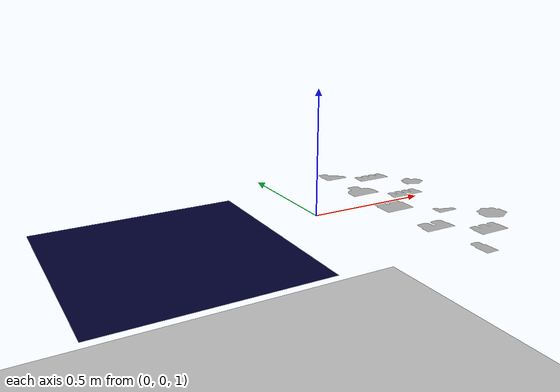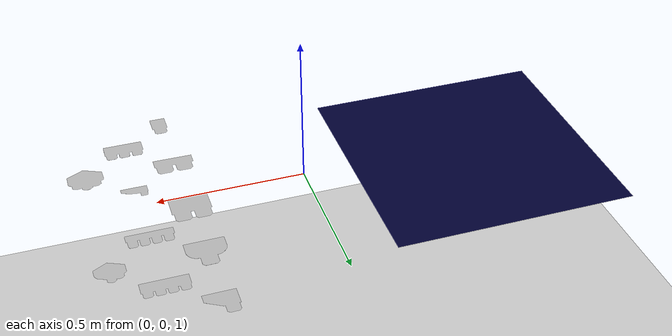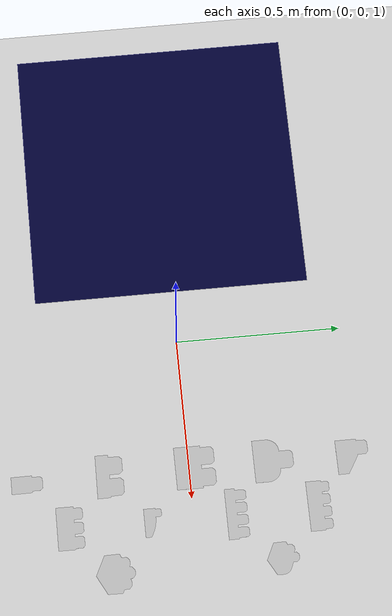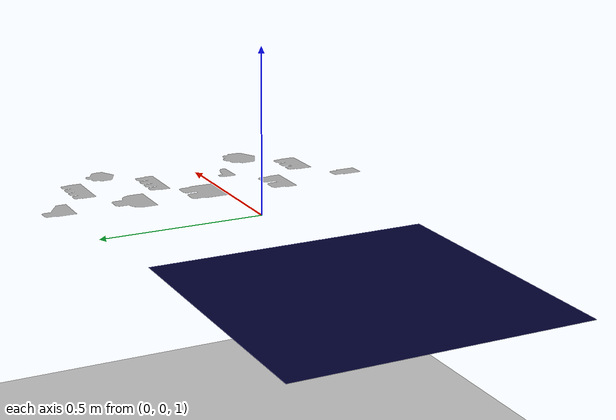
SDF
<sdf version="1.7">
 <world name="default">
  <light name="sun" type="directional">
   <pose>0 0 10 0 -0 0</pose>
   <diffuse>0.8 0.8 0.8 1</diffuse>
   <specular>0.2 0.2 0.2 1</specular>
   <attenuation>
    <range>1000</range>
    <constant>0.9</constant>
    <linear>0.01</linear>
    <quadratic>0.001</quadratic>
   </attenuation>
   <direction>-0.5 0.1 -0.9</direction>
   <spot><inner_angle>0</inner_angle><outer_angle>0</outer_angle><falloff>0</falloff></spot>
  </light>
  <model name="ground_plane">
   <pose>0 10 0 0 -0 0</pose>
   <static>1</static>
   <link name="link">
    <collision name="collision">
     <geometry><plane><normal>0 0 1</normal><size>100 100</size></plane></geometry>
     <surface>
      <contact><collide_bitmask>65535</collide_bitmask></contact>
      <friction><ode><mu>100</mu><mu2>50</mu2></ode></friction>
     </surface>
    </collision>
    <visual name="visual">
     <cast_shadows>0</cast_shadows>
     <geometry><plane><normal>0 0 1</normal><size>100 100</size></plane></geometry>
     <material>
      <script><uri>file://media/materials/scripts/gazebo.material</uri><name>Gazebo/Grey</name></script>
     </material>
    </visual>
   </link>
  </model>
  <gravity>0 0 -9.8</gravity>
  <magnetic_field>6e-06 2.3e-05 -4.2e-05</magnetic_field>
  <atmosphere type="adiabatic"/>
  <physics type="ode">
   <max_step_size>0.001</max_step_size>
   <real_time_factor>1</real_time_factor>
   <real_time_update_rate>1000</real_time_update_rate>
  </physics>
  <scene><ambient>0.4 0.4 0.4 1</ambient><background>0.7 0.7 0.7 1</background><shadows>1</shadows></scene>
  <spherical_coordinates>
   <surface_model>EARTH_WGS84</surface_model>
   <latitude_deg>0</latitude_deg>
   <longitude_deg>0</longitude_deg>
   <elevation>0</elevation>
   <heading_deg>0</heading_deg>
  </spherical_coordinates>
  <model name="silhouettes">
   <joint name="world_to_112" type="fixed">
    <pose relative_to="__model__">0.655 -0.29 0.667572 0 -0 0</pose>
    <parent>world</parent>
    <child>112-silhouette</child>
   </joint>
   <link name="112-silhouette">
    <pose relative_to="world_to_112">0 0 0 0 -0 0</pose>
    <inertial>
     <mass>0.005</mass>
     <inertia>
      <ixx>0.0004</ixx>
      <ixy>0.0001</ixy>
      <ixz>0</ixz>
      <iyy>0.0006</iyy>
      <iyz>0</iyz>
      <izz>0.0007</izz>
     </inertia>
    </inertial>
    <visual name="112-silhouette_visual">
     <geometry>
      <mesh>
       <scale>1 1 1</scale>
       <uri>/mnt/c/Users/davip/terzo_anno/Robotics/workspaces/PROGETTO_ROBOTICA/ur_grippertest/src/support/legos/legos_silhouettes/112-silhouette.dae</uri>
      </mesh>
     </geometry>
    </visual>
   </link>
   <joint name="world_to_121" type="fixed">
    <pose relative_to="__model__">0.567 -0.15 0.70912 0 -0 0</pose>
    <parent>world</parent>
    <child>121-silhouette</child>
   </joint>
   <link name="121-silhouette">
    <pose relative_to="world_to_121">0 0 0 0 -0 0</pose>
    <inertial>
     <mass>0.005</mass>
     <inertia>
      <ixx>0.0004</ixx>
      <ixy>0.0001</ixy>
      <ixz>0</ixz>
      <iyy>0.0006</iyy>
      <iyz>0</iyz>
      <izz>0.0007</izz>
     </inertia>
    </inertial>
    <visual name="121-silhouette_visual">
     <geometry>
      <mesh>
       <scale>1 1 1</scale>
       <uri>/mnt/c/Users/davip/terzo_anno/Robotics/workspaces/PROGETTO_ROBOTICA/ur_grippertest/src/support/legos/legos_silhouettes/121-silhouette.dae</uri>
      </mesh>
     </geometry>
    </visual>
   </link>
   <joint name="world_to_122" type="fixed">
    <pose relative_to="__model__">0.387 0 0.679568 0 -0 0</pose>
    <parent>world</parent>
    <child>122-silhouette</child>
   </joint>
   <link name="122-silhouette">
    <pose relative_to="world_to_122">0 0 0 0 -0 0</pose>
    <inertial>
     <mass>0.005</mass>
     <inertia>
      <ixx>0.0004</ixx>
      <ixy>0.0001</ixy>
      <ixz>0</ixz>
      <iyy>0.0006</iyy>
      <iyz>0</iyz>
      <izz>0.0007</izz>
     </inertia>
    </inertial>
    <visual name="122-silhouette_visual">
     <geometry>
      <mesh>
       <scale>1 1 1</scale>
       <uri>/mnt/c/Users/davip/terzo_anno/Robotics/workspaces/PROGETTO_ROBOTICA/ur_grippertest/src/support/legos/legos_silhouettes/122-silhouette.dae</uri>
      </mesh>
     </geometry>
    </visual>
   </link>
   <joint name="world_to_122doublearch" type="fixed">
    <pose relative_to="__model__">0.529 0.426 0.682539 0 -0 0</pose>
    <parent>world</parent>
    <child>122doublearch-silhouette</child>
   </joint>
   <link name="122doublearch-silhouette">
    <pose relative_to="world_to_122doublearch">0 0 0 0 -0 0</pose>
    <inertial>
     <mass>0.005</mass>
     <inertia>
      <ixx>0.0004</ixx>
      <ixy>0.0001</ixy>
      <ixz>0</ixz>
      <iyy>0.0006</iyy>
      <iyz>0</iyz>
      <izz>0.0007</izz>
     </inertia>
    </inertial>
    <visual name="122doublearch-silhouette_visual">
     <geometry>
      <mesh>
       <scale>1 1 1</scale>
       <uri>/mnt/c/Users/davip/terzo_anno/Robotics/workspaces/PROGETTO_ROBOTICA/ur_grippertest/src/support/legos/legos_silhouettes/122doublearch-silhouette.dae</uri>
      </mesh>
     </geometry>
    </visual>
   </link>
   <joint name="world_to_122slope" type="fixed">
    <pose relative_to="__model__">0.616 0.75 0.710843 0 -0 0</pose>
    <parent>world</parent>
    <child>122slope-silhouette</child>
   </joint>
   <link name="122slope-silhouette">
    <pose relative_to="world_to_122slope">0 0 0 0 -0 0</pose>
    <inertial>
     <mass>0.005</mass>
     <inertia>
      <ixx>0.0004</ixx>
      <ixy>0.0001</ixy>
      <ixz>0</ixz>
      <iyy>0.0006</iyy>
      <iyz>0</iyz>
      <izz>0.0007</izz>
     </inertia>
    </inertial>
    <visual name="122slope-silhouette_visual">
     <geometry>
      <mesh>
       <scale>1 1 1</scale>
       <uri>/mnt/c/Users/davip/terzo_anno/Robotics/workspaces/PROGETTO_ROBOTICA/ur_grippertest/src/support/legos/legos_silhouettes/122slope-silhouette.dae</uri>
      </mesh>
     </geometry>
    </visual>
   </link>
   <joint name="world_to_132" type="fixed">
    <pose relative_to="__model__">0.78 -0.247 0.682539 0 -0 0</pose>
    <parent>world</parent>
    <child>132-silhouette</child>
   </joint>
   <link name="132-silhouette">
    <pose relative_to="world_to_132">0 0 0 0 -0 0</pose>
    <inertial>
     <mass>0.005</mass>
     <inertia>
      <ixx>0.0004</ixx>
      <ixy>0.0001</ixy>
      <ixz>0</ixz>
      <iyy>0.0006</iyy>
      <iyz>0</iyz>
      <izz>0.0007</izz>
     </inertia>
    </inertial>
    <visual name="132-silhouette_visual">
     <geometry>
      <mesh>
       <scale>1 1 1</scale>
       <uri>/mnt/c/Users/davip/terzo_anno/Robotics/workspaces/PROGETTO_ROBOTICA/ur_grippertest/src/support/legos/legos_silhouettes/132-silhouette.dae</uri>
      </mesh>
     </geometry>
    </visual>
   </link>
   <joint name="world_to_132arch" type="fixed">
    <pose relative_to="__model__">0.765 0.014 0.717746 0 -0 0</pose>
    <parent>world</parent>
    <child>132arch-silhouette</child>
   </joint>
   <link name="132arch-silhouette">
    <pose relative_to="world_to_132arch">0 0 0 0 -0 0</pose>
    <inertial>
     <mass>0.005</mass>
     <inertia>
      <ixx>0.0004</ixx>
      <ixy>0.0001</ixy>
      <ixz>0</ixz>
      <iyy>0.0006</iyy>
      <iyz>0</iyz>
      <izz>0.0007</izz>
     </inertia>
    </inertial>
    <visual name="132arch-silhouette_visual">
     <geometry>
      <mesh>
       <scale>1 1 1</scale>
       <uri>/mnt/c/Users/davip/terzo_anno/Robotics/workspaces/PROGETTO_ROBOTICA/ur_grippertest/src/support/legos/legos_silhouettes/132arch-silhouette.dae</uri>
      </mesh>
     </geometry>
    </visual>
   </link>
   <joint name="world_to_141" type="fixed">
    <pose relative_to="__model__">0.727 0.175 0.711201 0 -0 0</pose>
    <parent>world</parent>
    <child>141-silhouette</child>
   </joint>
   <link name="141-silhouette">
    <pose relative_to="world_to_141">0 0 0 0 -0 0</pose>
    <inertial>
     <mass>0.005</mass>
     <inertia>
      <ixx>0.0004</ixx>
      <ixy>0.0001</ixy>
      <ixz>0</ixz>
      <iyy>0.0006</iyy>
      <iyz>0</iyz>
      <izz>0.0007</izz>
     </inertia>
    </inertial>
    <visual name="141-silhouette_visual">
     <geometry>
      <mesh>
       <scale>1 1 1</scale>
       <uri>/mnt/c/Users/davip/terzo_anno/Robotics/workspaces/PROGETTO_ROBOTICA/ur_grippertest/src/support/legos/legos_silhouettes/141-silhouette.dae</uri>
      </mesh>
     </geometry>
    </visual>
   </link>
   <joint name="world_to_142" type="fixed">
    <pose relative_to="__model__">0.728 0.46 0.717085 0 -0 0</pose>
    <parent>world</parent>
    <child>142-silhouette</child>
   </joint>
   <link name="142-silhouette">
    <pose relative_to="world_to_142">0 0 0 0 -0 0</pose>
    <inertial>
     <mass>0.005</mass>
     <inertia>
      <ixx>0.0004</ixx>
      <ixy>0.0001</ixy>
      <ixz>0</ixz>
      <iyy>0.0006</iyy>
      <iyz>0</iyz>
      <izz>0.0007</izz>
     </inertia>
    </inertial>
    <visual name="142-silhouette_visual">
     <geometry>
      <mesh>
       <scale>1 1 1</scale>
       <uri>/mnt/c/Users/davip/terzo_anno/Robotics/workspaces/PROGETTO_ROBOTICA/ur_grippertest/src/support/legos/legos_silhouettes/142-silhouette.dae</uri>
      </mesh>
     </geometry>
    </visual>
   </link>
   <joint name="world_to_222" type="fixed">
    <pose relative_to="__model__">0.87 0.08 0.715286 0 -0 0</pose>
    <parent>world</parent>
    <child>222-silhouette</child>
   </joint>
   <link name="222-silhouette">
    <pose relative_to="world_to_222">0 0 0 0 -0 0</pose>
    <inertial>
     <mass>0.005</mass>
     <inertia>
      <ixx>0.0004</ixx>
      <ixy>0.0001</ixy>
      <ixz>0</ixz>
      <iyy>0.0006</iyy>
      <iyz>0</iyz>
      <izz>0.0007</izz>
     </inertia>
    </inertial>
    <visual name="222-silhouette_visual">
     <geometry>
      <mesh>
       <scale>1 1 1</scale>
       <uri>/mnt/c/Users/davip/terzo_anno/Robotics/workspaces/PROGETTO_ROBOTICA/ur_grippertest/src/support/legos/legos_silhouettes/222-silhouette.dae</uri>
      </mesh>
     </geometry>
    </visual>
   </link>
   <joint name="world_to_222slope" type="fixed">
    <pose relative_to="__model__">0.887 0.45 0.714301 0 -0 0</pose>
    <parent>world</parent>
    <child>222slope-silhouette</child>
   </joint>
   <link name="222slope-silhouette">
    <pose relative_to="world_to_222slope">0 0 0 0 -0 0</pose>
    <inertial>
     <mass>0.005</mass>
     <inertia>
      <ixx>0.0004</ixx>
      <ixy>0.0001</ixy>
      <ixz>0</ixz>
      <iyy>0.0006</iyy>
      <iyz>0</iyz>
      <izz>0.0007</izz>
     </inertia>
    </inertial>
    <visual name="222slope-silhouette_visual">
     <geometry>
      <mesh>
       <scale>1 1 1</scale>
       <uri>/mnt/c/Users/davip/terzo_anno/Robotics/workspaces/PROGETTO_ROBOTICA/ur_grippertest/src/support/legos/legos_silhouettes/222slope-silhouette.dae</uri>
      </mesh>
     </geometry>
    </visual>
   </link>
  </model>
  <model name="provee">
   <link name="link">
    <inertial>
     <mass>0.01</mass>
     <inertia>
      <ixx>0.166667</ixx>
      <ixy>0</ixy>
      <ixz>0</ixz>
      <iyy>0.166667</iyy>
      <iyz>0</iyz>
      <izz>0.166667</izz>
     </inertia>
    </inertial>
    <visual name="visual">
     <geometry><box><size>0.836971 0.850166 0.00052</size></box></geometry>
     <material>
      <script><name>Gazebo/Grey</name><uri>file://media/materials/scripts/gazebo.material</uri></script>
      <shader type="pixel"><normal_map>__default__</normal_map></shader>
      <diffuse>0 0 0.2 0</diffuse>
      <ambient>0 0 0 1</ambient>
      <specular>0.01 0 0 1</specular>
      <emissive>0 0 0 1</emissive>
     </material>
    </visual>
    <collision name="collision">
     <geometry><box><size>0.836971 0.850166 0.00052</size></box></geometry>
     <surface>
      <friction>
       <ode><mu>1</mu><mu2>1</mu2><fdir1>0 0 0</fdir1><slip1>0</slip1><slip2>0</slip2></ode>
       <torsional>
        <coefficient>1</coefficient>
        <patch_radius>0</patch_radius>
        <surface_radius>0</surface_radius>
        <use_patch_radius>1</use_patch_radius>
        <ode><slip>0</slip></ode>
       </torsional>
      </friction>
      <bounce><restitution_coefficient>0</restitution_coefficient><threshold>1e+06</threshold></bounce>
      <contact>
       <collide_without_contact>0</collide_without_contact>
       <collide_without_contact_bitmask>1</collide_without_contact_bitmask>
       <collide_bitmask>1</collide_bitmask>
       <ode>
        <soft_cfm>0</soft_cfm>
        <soft_erp>0.2</soft_erp>
        <kp>1e+13</kp>
        <kd>1</kd>
        <max_vel>0.01</max_vel>
        <min_depth>0</min_depth>
       </ode>
       <bullet>
        <split_impulse>1</split_impulse>
        <split_impulse_penetration_threshold>-0.01</split_impulse_penetration_threshold>
        <soft_cfm>0</soft_cfm>
        <soft_erp>0.2</soft_erp>
        <kp>1e+13</kp>
        <kd>1</kd>
       </bullet>
      </contact>
     </surface>
    </collision>
   </link>
   <static>1</static>
   <pose>-0.6 0 0.965015 -8e-06 5e-06 0</pose>
  </model>
  <joint name="world_to_mat" type="fixed"><parent>world</parent><child>provee</child></joint>
 </world>
</sdf>
